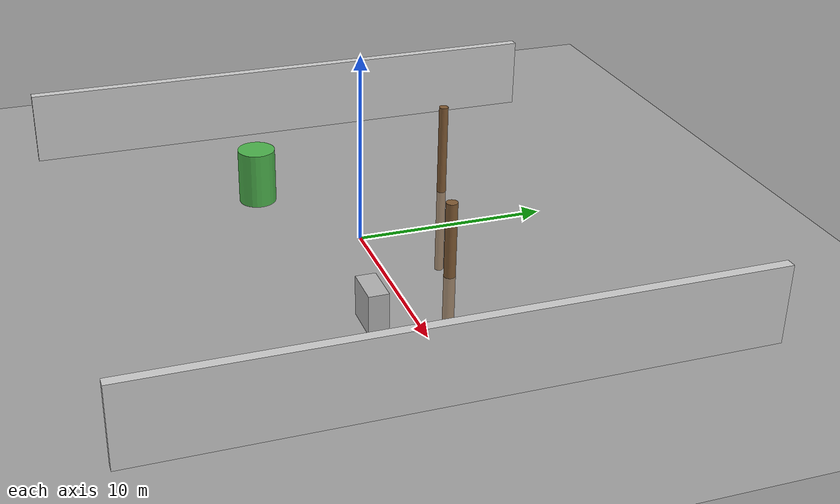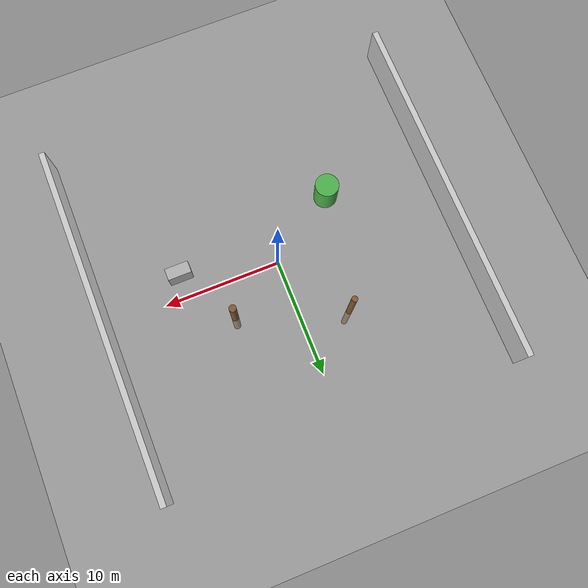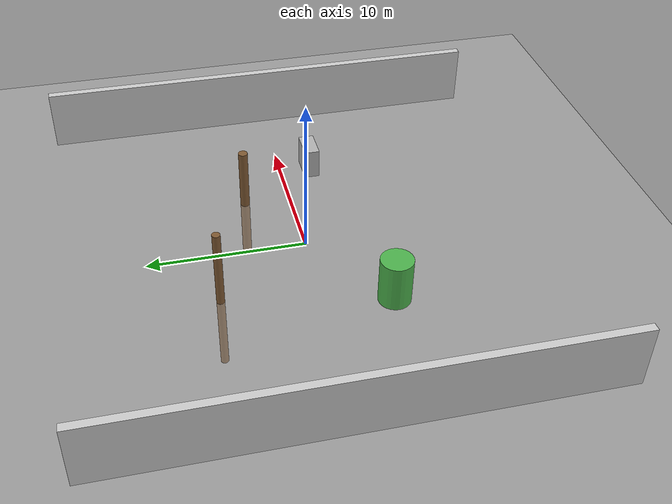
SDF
<?xml version="1.0" ?>
<sdf version="1.4">
  <world name="forest_environment">
    <!-- 基础世界配置 -->
    <include>
      <uri>model://ground_plane</uri>
    </include>

    <include>
      <uri>model://sun</uri>
    </include>

    <!-- 重力配置 -->
    <gravity>0 0 -9.8</gravity>

    <!-- 物理引擎配置 -->
    <physics name='default_physics' default='0' type='ode'>
      <gravity>0 0 -9.8066</gravity>
      <ode>
        <solver>
          <type>quick</type>
          <iters>10</iters>
          <sor>1.3</sor>
          <use_dynamic_moi_rescaling>0</use_dynamic_moi_rescaling>
        </solver>
        <constraints>
          <cfm>0</cfm>
          <erp>0.2</erp>
          <contact_max_correcting_vel>100</contact_max_correcting_vel>
          <contact_surface_layer>0.001</contact_surface_layer>
        </constraints>
      </ode>
      <max_step_size>0.004</max_step_size>
      <real_time_factor>1</real_time_factor>
      <real_time_update_rate>250</real_time_update_rate>
    </physics>

    <!-- 森林环境模型 -->
    <!-- 树木1 -->
    <model name="tree_1">
      <pose>5 3 0 0 0 0</pose>
      <static>true</static>
      <link name="trunk">
        <visual name="trunk_visual">
          <geometry>
            <cylinder>
              <radius>0.3</radius>
              <length>8</length>
            </cylinder>
          </geometry>
          <material>
            <ambient>0.3 0.2 0.1 1</ambient>
            <diffuse>0.5 0.35 0.2 1</diffuse>
          </material>
        </visual>
        <collision name="trunk_collision">
          <geometry>
            <cylinder>
              <radius>0.3</radius>
              <length>8</length>
            </cylinder>
          </geometry>
        </collision>
      </link>
    </model>

    <!-- 树木2 -->
    <model name="tree_2">
      <pose>-4 6 0 0 0 0</pose>
      <static>true</static>
      <link name="trunk">
        <visual name="trunk_visual">
          <geometry>
            <cylinder>
              <radius>0.25</radius>
              <length>10</length>
            </cylinder>
          </geometry>
          <material>
            <ambient>0.3 0.2 0.1 1</ambient>
            <diffuse>0.5 0.35 0.2 1</diffuse>
          </material>
        </visual>
        <collision name="trunk_collision">
          <geometry>
            <cylinder>
              <radius>0.25</radius>
              <length>10</length>
            </cylinder>
          </geometry>
        </collision>
      </link>
    </model>

    <!-- 障碍物1 -->
    <model name="obstacle_1">
      <pose>8 -2 1 0 0 0</pose>
      <static>true</static>
      <link name="link">
        <visual name="visual">
          <geometry>
            <box>
              <size>2 1 2</size>
            </box>
          </geometry>
          <material>
            <ambient>0.5 0.5 0.5 1</ambient>
            <diffuse>0.7 0.7 0.7 1</diffuse>
          </material>
        </visual>
        <collision name="collision">
          <geometry>
            <box>
              <size>2 1 2</size>
            </box>
          </geometry>
        </collision>
      </link>
    </model>

    <!-- 障碍物2 -->
    <model name="obstacle_2">
      <pose>-6 -4 1.5 0 0 0</pose>
      <static>true</static>
      <link name="link">
        <visual name="visual">
          <geometry>
            <cylinder>
              <radius>1</radius>
              <length>3</length>
            </cylinder>
          </geometry>
          <material>
            <ambient>0.2 0.5 0.2 1</ambient>
            <diffuse>0.3 0.7 0.3 1</diffuse>
          </material>
        </visual>
        <collision name="collision">
          <geometry>
            <cylinder>
              <radius>1</radius>
              <length>3</length>
            </cylinder>
          </geometry>
        </collision>
      </link>
    </model>

    <!-- 围墙 -->
    <model name="wall_1">
      <pose>15 0 2 0 0 0</pose>
      <static>true</static>
      <link name="link">
        <visual name="visual">
          <geometry>
            <box>
              <size>0.5 30 4</size>
            </box>
          </geometry>
          <material>
            <ambient>0.6 0.6 0.6 1</ambient>
            <diffuse>0.8 0.8 0.8 1</diffuse>
          </material>
        </visual>
        <collision name="collision">
          <geometry>
            <box>
              <size>0.5 30 4</size>
            </box>
          </geometry>
        </collision>
      </link>
    </model>

    <model name="wall_2">
      <pose>-15 0 2 0 0 0</pose>
      <static>true</static>
      <link name="link">
        <visual name="visual">
          <geometry>
            <box>
              <size>0.5 30 4</size>
            </box>
          </geometry>
          <material>
            <ambient>0.6 0.6 0.6 1</ambient>
            <diffuse>0.8 0.8 0.8 1</diffuse>
          </material>
        </visual>
        <collision name="collision">
          <geometry>
            <box>
              <size>0.5 30 4</size>
            </box>
          </geometry>
        </collision>
      </link>
    </model>

    <!-- 光照配置 -->
    <light name='sun' type='directional'>
      <cast_shadows>1</cast_shadows>
      <pose>0 0 10 0 -0 0</pose>
      <diffuse>0.8 0.8 0.8 1</diffuse>
      <specular>0.2 0.2 0.2 1</specular>
      <attenuation>
        <range>1000</range>
        <constant>0.9</constant>
        <linear>0.01</linear>
        <quadratic>0.001</quadratic>
      </attenuation>
      <direction>-0.5 0.1 -0.9</direction>
    </light>

  </world>
</sdf>
